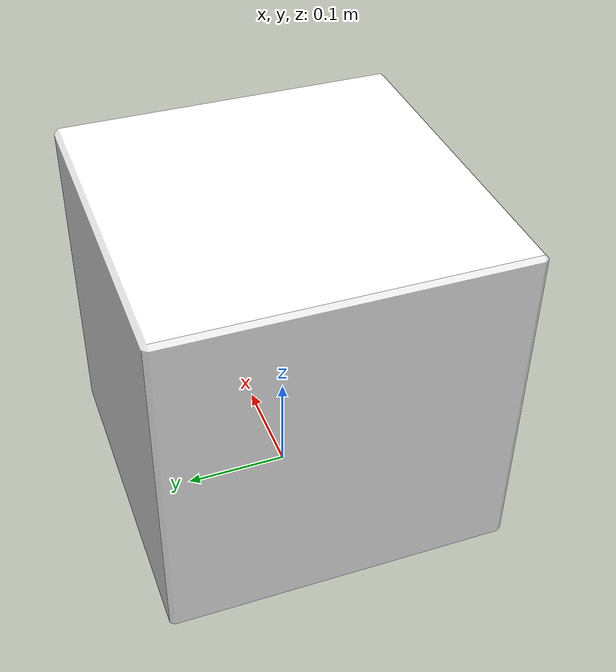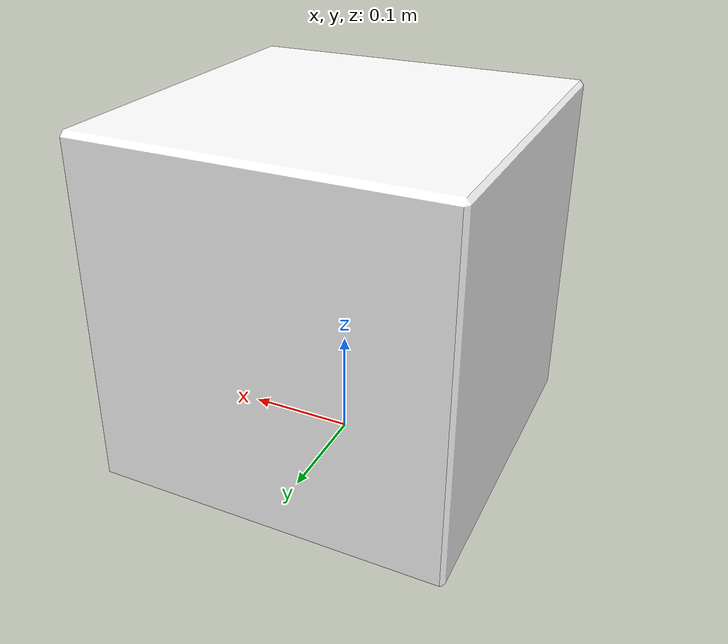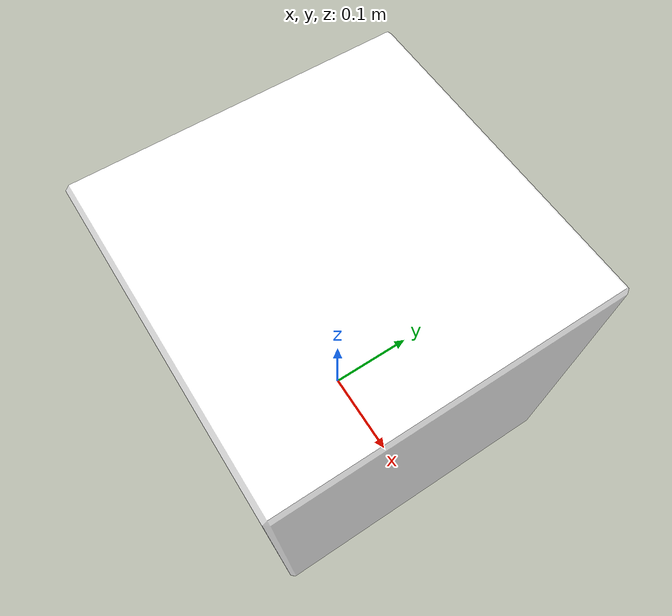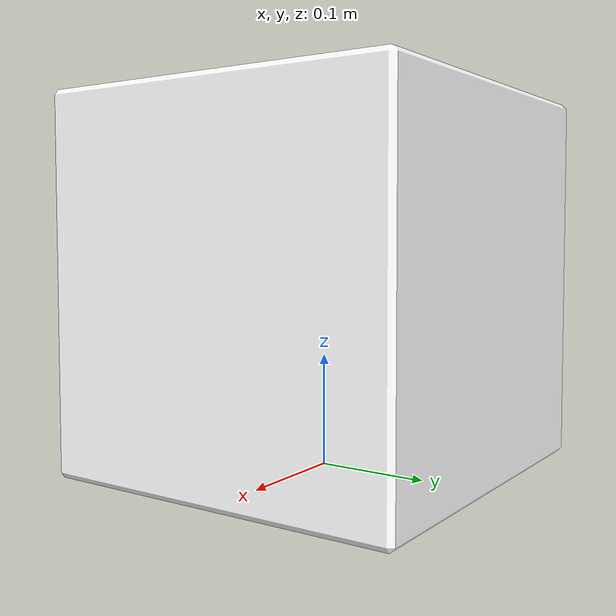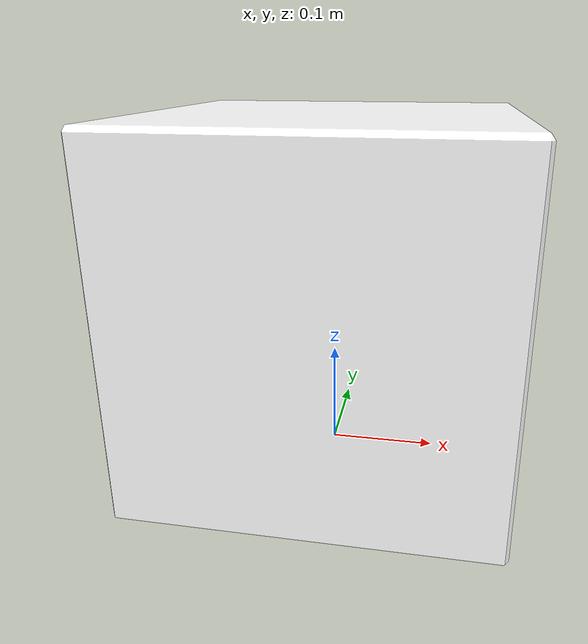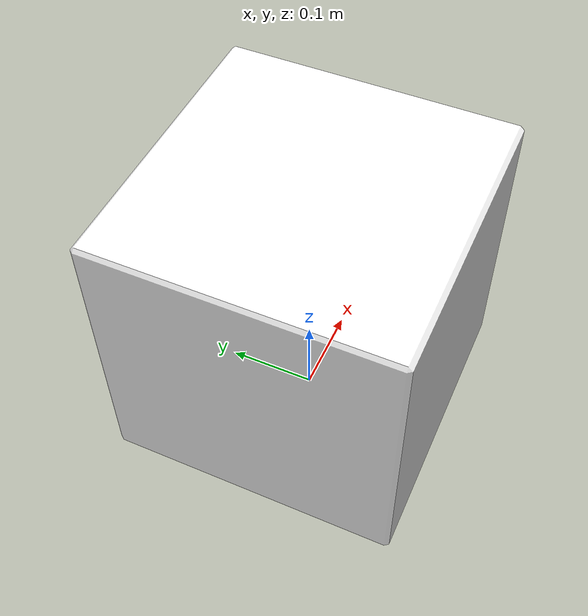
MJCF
<mujoco>
  <compiler angle="radian" assetdir="assets"/>
  <option>
    <flag/>
  </option>
  <statistic/>
  <asset>
    <texture type="2d" colorspace="sRGB" name="T_CardBoxA_D" file="T_CardBoxA_D.png"/>
    <texture type="2d" colorspace="linear" name="T_CardBoxA_N" file="T_CardBoxA_N.png"/>
    <texture type="2d" colorspace="linear" name="T_CardBoxA_ORM" file="T_CardBoxA_ORM.png"/>
    <material name="cardbox" rgba="1.0 1.0 1.0 1.0" reflectance="0.5" roughness="1.0" metallic="1.0">
      <layer texture="T_CardBoxA_D" role="rgb"/>
      <layer texture="T_CardBoxA_N" role="normal"/>
      <layer texture="T_CardBoxA_ORM" role="orm"/>
    </material>
    <mesh name="CardBoxA_01" file="CardBoxA_01.obj"/>
  </asset>
  <worldbody>
    <geom name="CardBoxA_01" pos="0.0 0.0 0.1650001" quat="1.0 0.0 0.0 0.0" type="mesh" mesh="CardBoxA_01" material="cardbox" group="2"/>
  </worldbody>
</mujoco>
